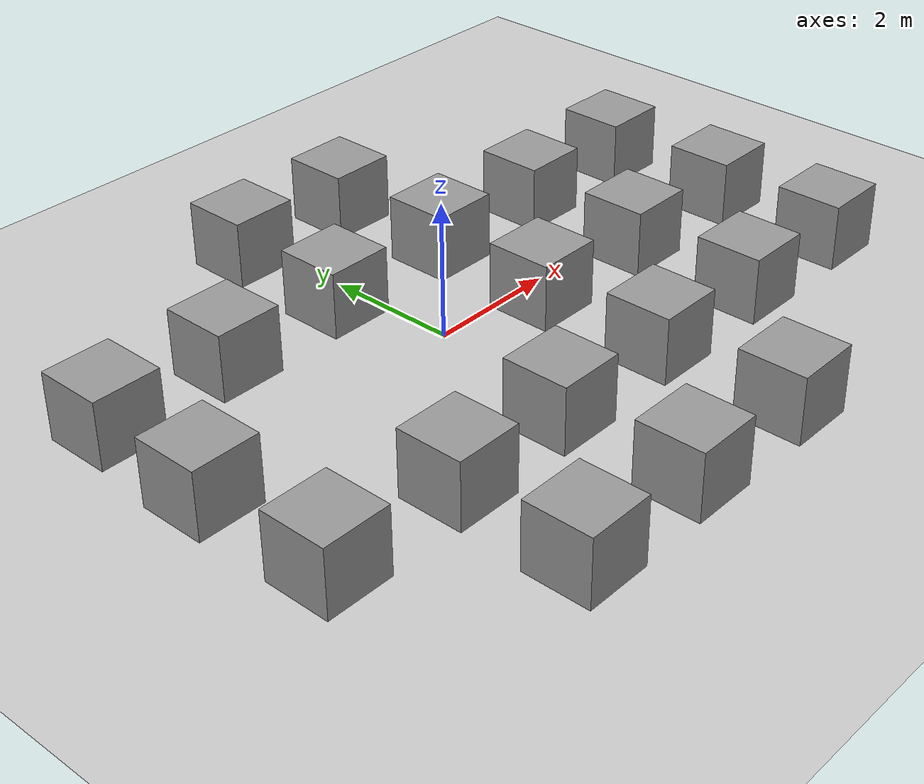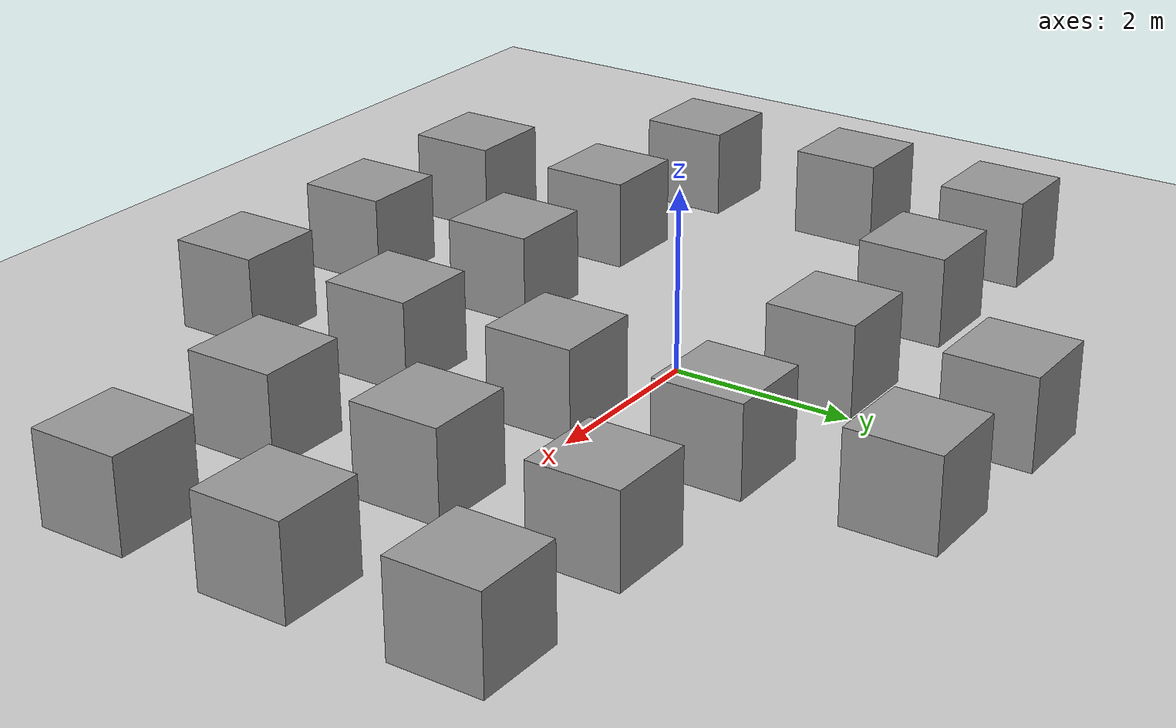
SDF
<sdf version="1.7">
 <world name="default">
  <light name="sun" type="directional">
   <pose>0 0 10 0 -0 0</pose>
   <diffuse>0.8 0.8 0.8 1</diffuse>
   <specular>0.2 0.2 0.2 1</specular>
   <attenuation>
    <range>1000</range>
    <constant>0.9</constant>
    <linear>0.01</linear>
    <quadratic>0.001</quadratic>
   </attenuation>
   <direction>-0.5 0.1 -0.9</direction>
   <spot><inner_angle>0</inner_angle><outer_angle>0</outer_angle><falloff>0</falloff></spot>
  </light>
  <model name="ground_plane">
   <static>1</static>
   <link name="link">
    <collision name="collision">
     <geometry><plane><normal>0 0 1</normal><size>100 100</size></plane></geometry>
     <surface>
      <contact><collide_bitmask>65535</collide_bitmask></contact>
      <friction><ode><mu>100</mu><mu2>50</mu2></ode></friction>
     </surface>
    </collision>
    <visual name="visual">
     <cast_shadows>0</cast_shadows>
     <geometry><plane><normal>0 0 1</normal><size>100 100</size></plane></geometry>
     <material>
      <script><uri>file://media/materials/scripts/gazebo.material</uri><name>Gazebo/Grey</name></script>
     </material>
    </visual>
   </link>
  </model>
  <gravity>0 0 -9.8</gravity>
  <magnetic_field>6e-06 2.3e-05 -4.2e-05</magnetic_field>
  <atmosphere type="adiabatic"/>
  <physics type="ode">
   <max_step_size>0.001</max_step_size>
   <real_time_factor>1</real_time_factor>
   <real_time_update_rate>1000</real_time_update_rate>
  </physics>
  <scene><ambient>0.4 0.4 0.4 1</ambient><background>0.7 0.7 0.7 1</background><shadows>1</shadows></scene>
  <spherical_coordinates>
   <surface_model>EARTH_WGS84</surface_model>
   <latitude_deg>0</latitude_deg>
   <longitude_deg>0</longitude_deg>
   <elevation>0</elevation>
   <heading_deg>0</heading_deg>
  </spherical_coordinates>
  <model name="unit_box">
   <pose>1.54628 1.49914 0.499995 0 1e-05 0</pose>
   <link name="link">
    <inertial>
     <mass>1</mass>
     <inertia>
      <ixx>0.166667</ixx>
      <ixy>0</ixy>
      <ixz>0</ixz>
      <iyy>0.166667</iyy>
      <iyz>0</iyz>
      <izz>0.166667</izz>
     </inertia>
    </inertial>
    <collision name="collision"><geometry><box><size>1 1 1</size></box></geometry></collision>
    <visual name="visual">
     <geometry><box><size>1 1 1</size></box></geometry>
     <material>
      <script><name>Gazebo/Grey</name><uri>file://media/materials/scripts/gazebo.material</uri></script>
     </material>
    </visual>
   </link>
  </model>
  <model name="unit_box_0">
   <pose>3.53348 1.48947 0.499995 -1e-05 -0 -0</pose>
   <link name="link">
    <inertial>
     <mass>1</mass>
     <inertia>
      <ixx>0.166667</ixx>
      <ixy>0</ixy>
      <ixz>0</ixz>
      <iyy>0.166667</iyy>
      <iyz>0</iyz>
      <izz>0.166667</izz>
     </inertia>
    </inertial>
    <collision name="collision"><geometry><box><size>1 1 1</size></box></geometry></collision>
    <visual name="visual">
     <geometry><box><size>1 1 1</size></box></geometry>
     <material>
      <script><name>Gazebo/Grey</name><uri>file://media/materials/scripts/gazebo.material</uri></script>
     </material>
    </visual>
   </link>
  </model>
  <model name="unit_box_1">
   <pose>5.49448 1.50782 0.499995 0 1e-05 0</pose>
   <link name="link">
    <inertial>
     <mass>1</mass>
     <inertia>
      <ixx>0.166667</ixx>
      <ixy>0</ixy>
      <ixz>0</ixz>
      <iyy>0.166667</iyy>
      <iyz>0</iyz>
      <izz>0.166667</izz>
     </inertia>
    </inertial>
    <collision name="collision"><geometry><box><size>1 1 1</size></box></geometry></collision>
    <visual name="visual">
     <geometry><box><size>1 1 1</size></box></geometry>
     <material>
      <script><name>Gazebo/Grey</name><uri>file://media/materials/scripts/gazebo.material</uri></script>
     </material>
    </visual>
   </link>
  </model>
  <model name="unit_box_2">
   <pose>1.47826 -0.468829 0.499995 -1e-05 -0 -0</pose>
   <link name="link">
    <inertial>
     <mass>1</mass>
     <inertia>
      <ixx>0.166667</ixx>
      <ixy>0</ixy>
      <ixz>0</ixz>
      <iyy>0.166667</iyy>
      <iyz>0</iyz>
      <izz>0.166667</izz>
     </inertia>
    </inertial>
    <collision name="collision"><geometry><box><size>1 1 1</size></box></geometry></collision>
    <visual name="visual">
     <geometry><box><size>1 1 1</size></box></geometry>
     <material>
      <script><name>Gazebo/Grey</name><uri>file://media/materials/scripts/gazebo.material</uri></script>
     </material>
    </visual>
   </link>
  </model>
  <model name="unit_box_3">
   <pose>3.4876 -0.501156 0.499995 0 1e-05 0</pose>
   <link name="link">
    <inertial>
     <mass>1</mass>
     <inertia>
      <ixx>0.166667</ixx>
      <ixy>0</ixy>
      <ixz>0</ixz>
      <iyy>0.166667</iyy>
      <iyz>0</iyz>
      <izz>0.166667</izz>
     </inertia>
    </inertial>
    <collision name="collision"><geometry><box><size>1 1 1</size></box></geometry></collision>
    <visual name="visual">
     <geometry><box><size>1 1 1</size></box></geometry>
     <material>
      <script><name>Gazebo/Grey</name><uri>file://media/materials/scripts/gazebo.material</uri></script>
     </material>
    </visual>
   </link>
  </model>
  <model name="unit_box_4">
   <pose>5.53598 -0.529477 0.499995 -1e-05 -0 -0</pose>
   <link name="link">
    <inertial>
     <mass>1</mass>
     <inertia>
      <ixx>0.166667</ixx>
      <ixy>0</ixy>
      <ixz>0</ixz>
      <iyy>0.166667</iyy>
      <iyz>0</iyz>
      <izz>0.166667</izz>
     </inertia>
    </inertial>
    <collision name="collision"><geometry><box><size>1 1 1</size></box></geometry></collision>
    <visual name="visual">
     <geometry><box><size>1 1 1</size></box></geometry>
     <material>
      <script><name>Gazebo/Grey</name><uri>file://media/materials/scripts/gazebo.material</uri></script>
     </material>
    </visual>
   </link>
  </model>
  <model name="unit_box_5">
   <pose>-0.534373 1.51392 0.499995 0 1e-05 0</pose>
   <link name="link">
    <inertial>
     <mass>1</mass>
     <inertia>
      <ixx>0.166667</ixx>
      <ixy>0</ixy>
      <ixz>0</ixz>
      <iyy>0.166667</iyy>
      <iyz>0</iyz>
      <izz>0.166667</izz>
     </inertia>
    </inertial>
    <collision name="collision"><geometry><box><size>1 1 1</size></box></geometry></collision>
    <visual name="visual">
     <geometry><box><size>1 1 1</size></box></geometry>
     <material>
      <script><name>Gazebo/Grey</name><uri>file://media/materials/scripts/gazebo.material</uri></script>
     </material>
    </visual>
   </link>
  </model>
  <model name="unit_box_6">
   <pose>-0.549012 -2.47935 0.499995 -1e-05 -0 -0</pose>
   <link name="link">
    <inertial>
     <mass>1</mass>
     <inertia>
      <ixx>0.166667</ixx>
      <ixy>0</ixy>
      <ixz>0</ixz>
      <iyy>0.166667</iyy>
      <iyz>0</iyz>
      <izz>0.166667</izz>
     </inertia>
    </inertial>
    <collision name="collision"><geometry><box><size>1 1 1</size></box></geometry></collision>
    <visual name="visual">
     <geometry><box><size>1 1 1</size></box></geometry>
     <material>
      <script><name>Gazebo/Grey</name><uri>file://media/materials/scripts/gazebo.material</uri></script>
     </material>
    </visual>
   </link>
  </model>
  <model name="unit_box_7">
   <pose>1.49605 -2.47369 0.499995 0 1e-05 0</pose>
   <link name="link">
    <inertial>
     <mass>1</mass>
     <inertia>
      <ixx>0.166667</ixx>
      <ixy>0</ixy>
      <ixz>0</ixz>
      <iyy>0.166667</iyy>
      <iyz>0</iyz>
      <izz>0.166667</izz>
     </inertia>
    </inertial>
    <collision name="collision"><geometry><box><size>1 1 1</size></box></geometry></collision>
    <visual name="visual">
     <geometry><box><size>1 1 1</size></box></geometry>
     <material>
      <script><name>Gazebo/Grey</name><uri>file://media/materials/scripts/gazebo.material</uri></script>
     </material>
    </visual>
   </link>
  </model>
  <model name="unit_box_8">
   <pose>3.49642 -2.48122 0.499995 -1e-05 -0 -0</pose>
   <link name="link">
    <inertial>
     <mass>1</mass>
     <inertia>
      <ixx>0.166667</ixx>
      <ixy>0</ixy>
      <ixz>0</ixz>
      <iyy>0.166667</iyy>
      <iyz>0</iyz>
      <izz>0.166667</izz>
     </inertia>
    </inertial>
    <collision name="collision"><geometry><box><size>1 1 1</size></box></geometry></collision>
    <visual name="visual">
     <geometry><box><size>1 1 1</size></box></geometry>
     <material>
      <script><name>Gazebo/Grey</name><uri>file://media/materials/scripts/gazebo.material</uri></script>
     </material>
    </visual>
   </link>
  </model>
  <model name="unit_box_9">
   <pose>5.48259 -2.48336 0.499995 0 1e-05 0</pose>
   <link name="link">
    <inertial>
     <mass>1</mass>
     <inertia>
      <ixx>0.166667</ixx>
      <ixy>0</ixy>
      <ixz>0</ixz>
      <iyy>0.166667</iyy>
      <iyz>0</iyz>
      <izz>0.166667</izz>
     </inertia>
    </inertial>
    <collision name="collision"><geometry><box><size>1 1 1</size></box></geometry></collision>
    <visual name="visual">
     <geometry><box><size>1 1 1</size></box></geometry>
     <material>
      <script><name>Gazebo/Grey</name><uri>file://media/materials/scripts/gazebo.material</uri></script>
     </material>
    </visual>
   </link>
  </model>
  <model name="unit_box_10">
   <pose>-2.5274 1.48456 0.499995 -1e-05 -0 -0</pose>
   <link name="link">
    <inertial>
     <mass>1</mass>
     <inertia>
      <ixx>0.166667</ixx>
      <ixy>0</ixy>
      <ixz>0</ixz>
      <iyy>0.166667</iyy>
      <iyz>0</iyz>
      <izz>0.166667</izz>
     </inertia>
    </inertial>
    <collision name="collision"><geometry><box><size>1 1 1</size></box></geometry></collision>
    <visual name="visual">
     <geometry><box><size>1 1 1</size></box></geometry>
     <material>
      <script><name>Gazebo/Grey</name><uri>file://media/materials/scripts/gazebo.material</uri></script>
     </material>
    </visual>
   </link>
  </model>
  <model name="unit_box_11">
   <pose>-2.46434 -2.52862 0.499995 0 1e-05 0</pose>
   <link name="link">
    <inertial>
     <mass>1</mass>
     <inertia>
      <ixx>0.166667</ixx>
      <ixy>0</ixy>
      <ixz>0</ixz>
      <iyy>0.166667</iyy>
      <iyz>0</iyz>
      <izz>0.166667</izz>
     </inertia>
    </inertial>
    <collision name="collision"><geometry><box><size>1 1 1</size></box></geometry></collision>
    <visual name="visual">
     <geometry><box><size>1 1 1</size></box></geometry>
     <material>
      <script><name>Gazebo/Grey</name><uri>file://media/materials/scripts/gazebo.material</uri></script>
     </material>
    </visual>
   </link>
  </model>
  <model name="unit_box_12">
   <pose>-4.51365 -2.47479 0.499995 -1e-05 -0 -0</pose>
   <link name="link">
    <inertial>
     <mass>1</mass>
     <inertia>
      <ixx>0.166667</ixx>
      <ixy>0</ixy>
      <ixz>0</ixz>
      <iyy>0.166667</iyy>
      <iyz>0</iyz>
      <izz>0.166667</izz>
     </inertia>
    </inertial>
    <collision name="collision"><geometry><box><size>1 1 1</size></box></geometry></collision>
    <visual name="visual">
     <geometry><box><size>1 1 1</size></box></geometry>
     <material>
      <script><name>Gazebo/Grey</name><uri>file://media/materials/scripts/gazebo.material</uri></script>
     </material>
    </visual>
   </link>
  </model>
  <model name="unit_box_13">
   <pose>-4.561 -0.429415 0.499995 0 1e-05 0</pose>
   <link name="link">
    <inertial>
     <mass>1</mass>
     <inertia>
      <ixx>0.166667</ixx>
      <ixy>0</ixy>
      <ixz>0</ixz>
      <iyy>0.166667</iyy>
      <iyz>0</iyz>
      <izz>0.166667</izz>
     </inertia>
    </inertial>
    <collision name="collision"><geometry><box><size>1 1 1</size></box></geometry></collision>
    <visual name="visual">
     <geometry><box><size>1 1 1</size></box></geometry>
     <material>
      <script><name>Gazebo/Grey</name><uri>file://media/materials/scripts/gazebo.material</uri></script>
     </material>
    </visual>
   </link>
  </model>
  <model name="unit_box_14">
   <pose>-4.45795 1.47795 0.499995 -1e-05 -0 -0</pose>
   <link name="link">
    <inertial>
     <mass>1</mass>
     <inertia>
      <ixx>0.166667</ixx>
      <ixy>0</ixy>
      <ixz>0</ixz>
      <iyy>0.166667</iyy>
      <iyz>0</iyz>
      <izz>0.166667</izz>
     </inertia>
    </inertial>
    <collision name="collision"><geometry><box><size>1 1 1</size></box></geometry></collision>
    <visual name="visual">
     <geometry><box><size>1 1 1</size></box></geometry>
     <material>
      <script><name>Gazebo/Grey</name><uri>file://media/materials/scripts/gazebo.material</uri></script>
     </material>
    </visual>
   </link>
  </model>
  <model name="unit_box_15">
   <pose>-0.46064 3.49275 0.499995 0 1e-05 0</pose>
   <link name="link">
    <inertial>
     <mass>1</mass>
     <inertia>
      <ixx>0.166667</ixx>
      <ixy>0</ixy>
      <ixz>0</ixz>
      <iyy>0.166667</iyy>
      <iyz>0</iyz>
      <izz>0.166667</izz>
     </inertia>
    </inertial>
    <collision name="collision"><geometry><box><size>1 1 1</size></box></geometry></collision>
    <visual name="visual">
     <geometry><box><size>1 1 1</size></box></geometry>
     <material>
      <script><name>Gazebo/Grey</name><uri>file://media/materials/scripts/gazebo.material</uri></script>
     </material>
    </visual>
   </link>
  </model>
  <model name="unit_box_16">
   <pose>1.44869 3.45968 0.499995 -1e-05 -0 -0</pose>
   <link name="link">
    <inertial>
     <mass>1</mass>
     <inertia>
      <ixx>0.166667</ixx>
      <ixy>0</ixy>
      <ixz>0</ixz>
      <iyy>0.166667</iyy>
      <iyz>0</iyz>
      <izz>0.166667</izz>
     </inertia>
    </inertial>
    <collision name="collision"><geometry><box><size>1 1 1</size></box></geometry></collision>
    <visual name="visual">
     <geometry><box><size>1 1 1</size></box></geometry>
     <material>
      <script><name>Gazebo/Grey</name><uri>file://media/materials/scripts/gazebo.material</uri></script>
     </material>
    </visual>
   </link>
  </model>
  <model name="unit_box_17">
   <pose>-2.52461 -4.47197 0.499995 0 1e-05 0</pose>
   <link name="link">
    <inertial>
     <mass>1</mass>
     <inertia>
      <ixx>0.166667</ixx>
      <ixy>0</ixy>
      <ixz>0</ixz>
      <iyy>0.166667</iyy>
      <iyz>0</iyz>
      <izz>0.166667</izz>
     </inertia>
    </inertial>
    <collision name="collision"><geometry><box><size>1 1 1</size></box></geometry></collision>
    <visual name="visual">
     <geometry><box><size>1 1 1</size></box></geometry>
     <material>
      <script><name>Gazebo/Grey</name><uri>file://media/materials/scripts/gazebo.material</uri></script>
     </material>
    </visual>
   </link>
  </model>
  <model name="unit_box_18">
   <pose>-0.525029 -4.48008 0.499995 -1e-05 -0 0</pose>
   <link name="link">
    <inertial>
     <mass>1</mass>
     <inertia>
      <ixx>0.166667</ixx>
      <ixy>0</ixy>
      <ixz>0</ixz>
      <iyy>0.166667</iyy>
      <iyz>0</iyz>
      <izz>0.166667</izz>
     </inertia>
    </inertial>
    <collision name="collision"><geometry><box><size>1 1 1</size></box></geometry></collision>
    <visual name="visual">
     <geometry><box><size>1 1 1</size></box></geometry>
     <material>
      <script><name>Gazebo/Grey</name><uri>file://media/materials/scripts/gazebo.material</uri></script>
     </material>
    </visual>
   </link>
  </model>
  <model name="unit_box_19">
   <pose>1.51914 -4.50735 0.5 0 -0 0</pose>
   <link name="link">
    <inertial>
     <mass>1</mass>
     <inertia>
      <ixx>0.166667</ixx>
      <ixy>0</ixy>
      <ixz>0</ixz>
      <iyy>0.166667</iyy>
      <iyz>0</iyz>
      <izz>0.166667</izz>
     </inertia>
    </inertial>
    <collision name="collision"><geometry><box><size>1 1 1</size></box></geometry></collision>
    <visual name="visual">
     <geometry><box><size>1 1 1</size></box></geometry>
     <material>
      <script><name>Gazebo/Grey</name><uri>file://media/materials/scripts/gazebo.material</uri></script>
     </material>
    </visual>
   </link>
  </model>
 </world>
</sdf>
